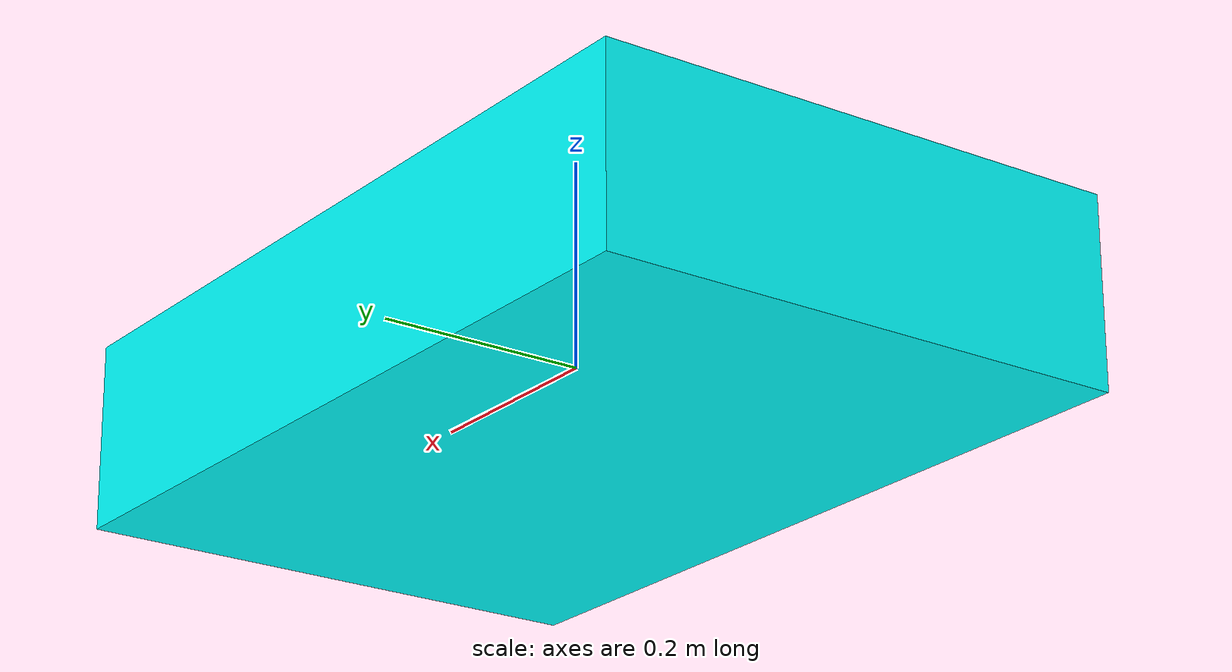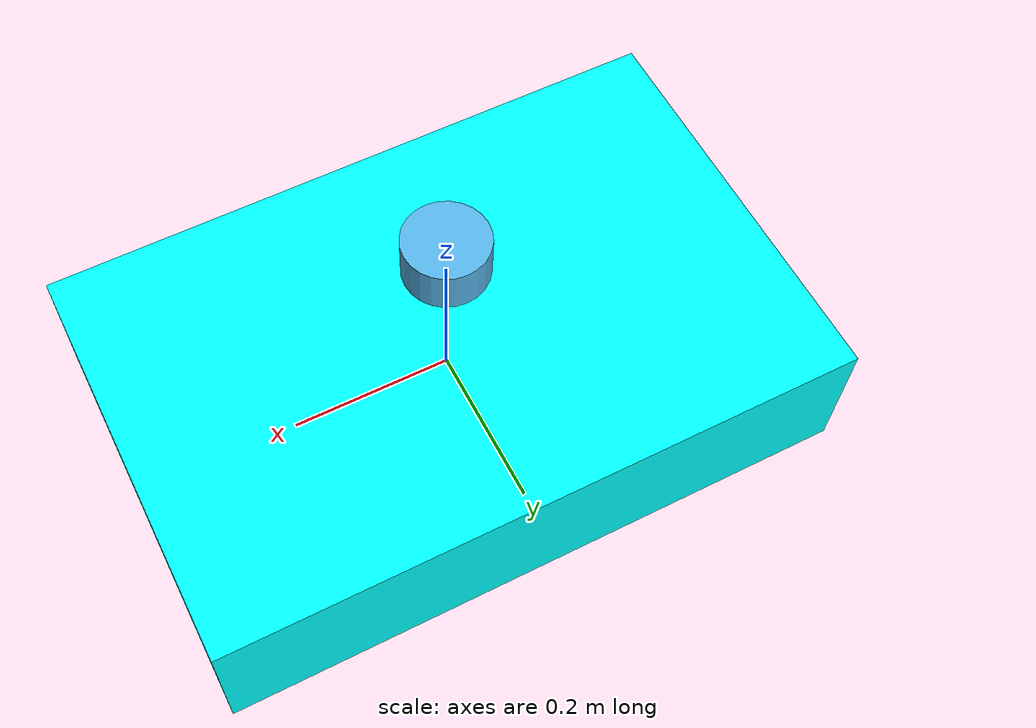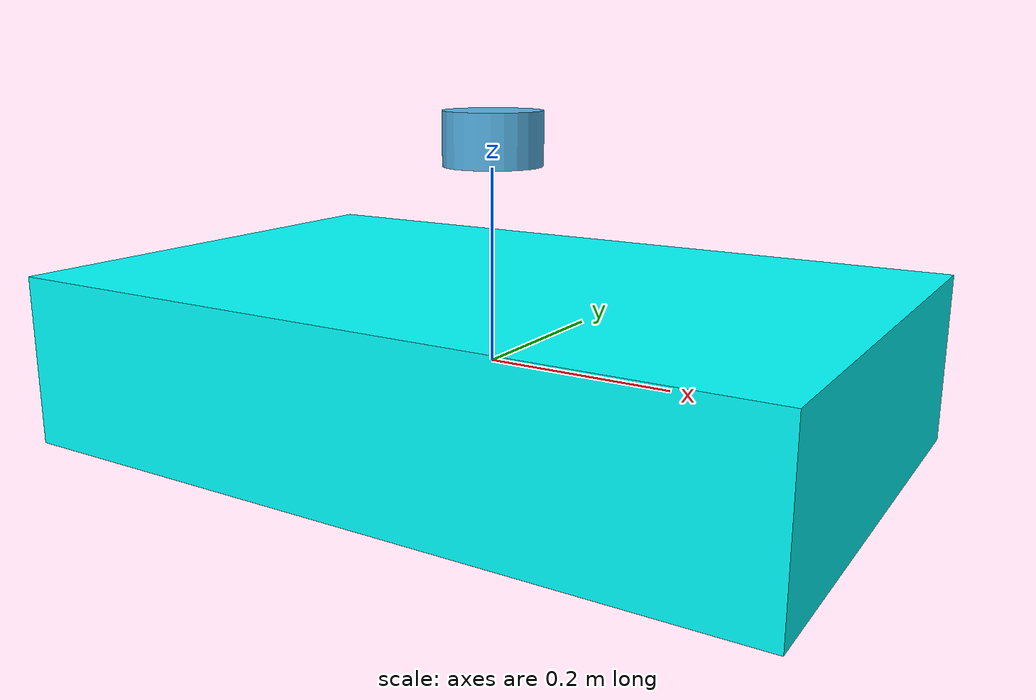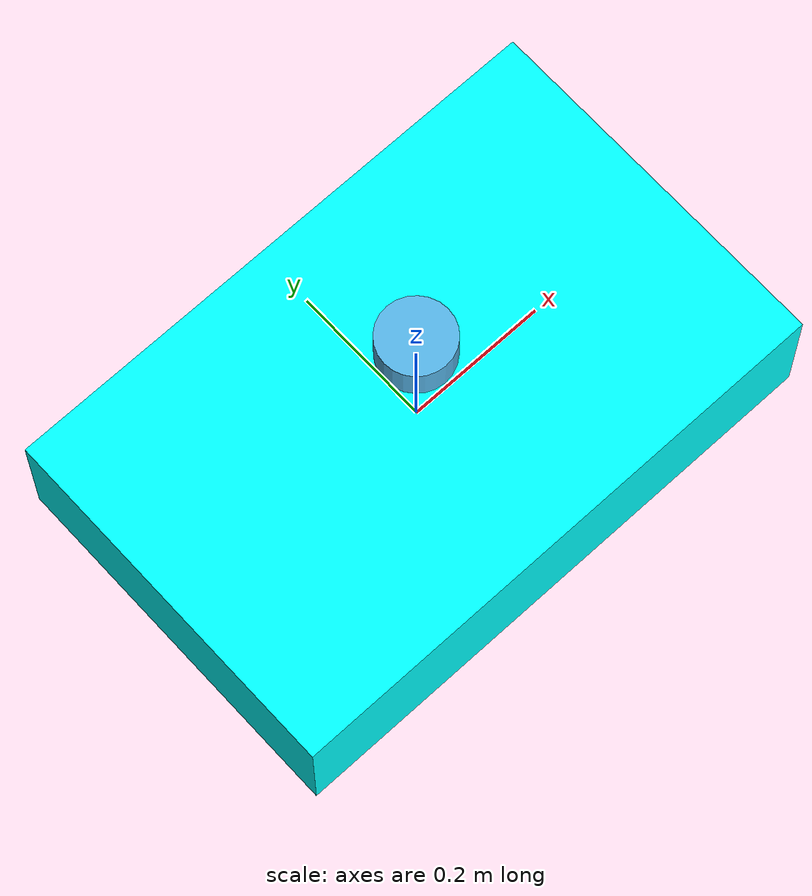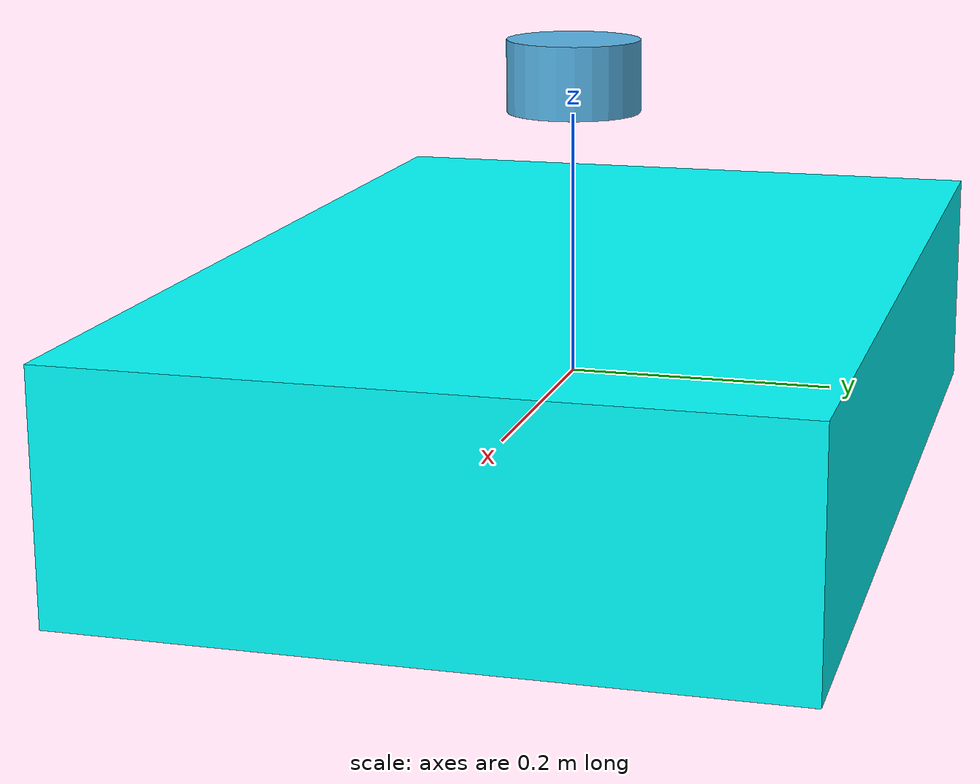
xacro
<?xml version="1.0"?>
<robot name="none" xmlns:xacro="http://ros.org/wiki/xacro">
  <xacro:arg name="use_gps" default="false"/>

  <xacro:property name="base_width" value="0.515"/>
  <xacro:property name="base_length" value="0.800"/>
  <xacro:property name="base_height" value="0.18"/>

  <!-- Robot Base -->
  <link name="base_link">
    <visual>
      <geometry>
        <box size="${base_length} ${base_width} ${base_height}"/>
      </geometry>
      <material name="Cyan">
        <color rgba="0 1.0 1.0 1.0"/>
      </material>
    </visual>

    <collision>
      <geometry>
        <box size="${base_length} ${base_width} ${base_height}"/>
      </geometry>
    </collision>
  </link>

  <link name="lidar_link">
    <inertial>
      <origin xyz="0 0 0" rpy="0 0 0"/>
      <mass value="0.525"/>
      <inertia ixx="0.001"  ixy="0"  ixz="0" iyy="0.001" iyz="0" izz="0.001" />
    </inertial>

    <collision>
      <origin xyz="0 0 0" rpy="0 0 0"/>
      <geometry>
         <cylinder radius="0.0508" length="0.055"/>
      </geometry>
    </collision>

    <visual>
      <origin xyz="0 0 0" rpy="0 0 0"/>
      <geometry>
         <cylinder radius="0.0508" length="0.055"/>
      </geometry>
    </visual>
  </link>

  <joint name="lidar_joint" type="fixed">
    <parent link="base_link"/>
    <child link="lidar_link"/>
        <origin xyz="0.0 0 0.23" rpy="0 0 0"/>
  </joint>

</robot>
